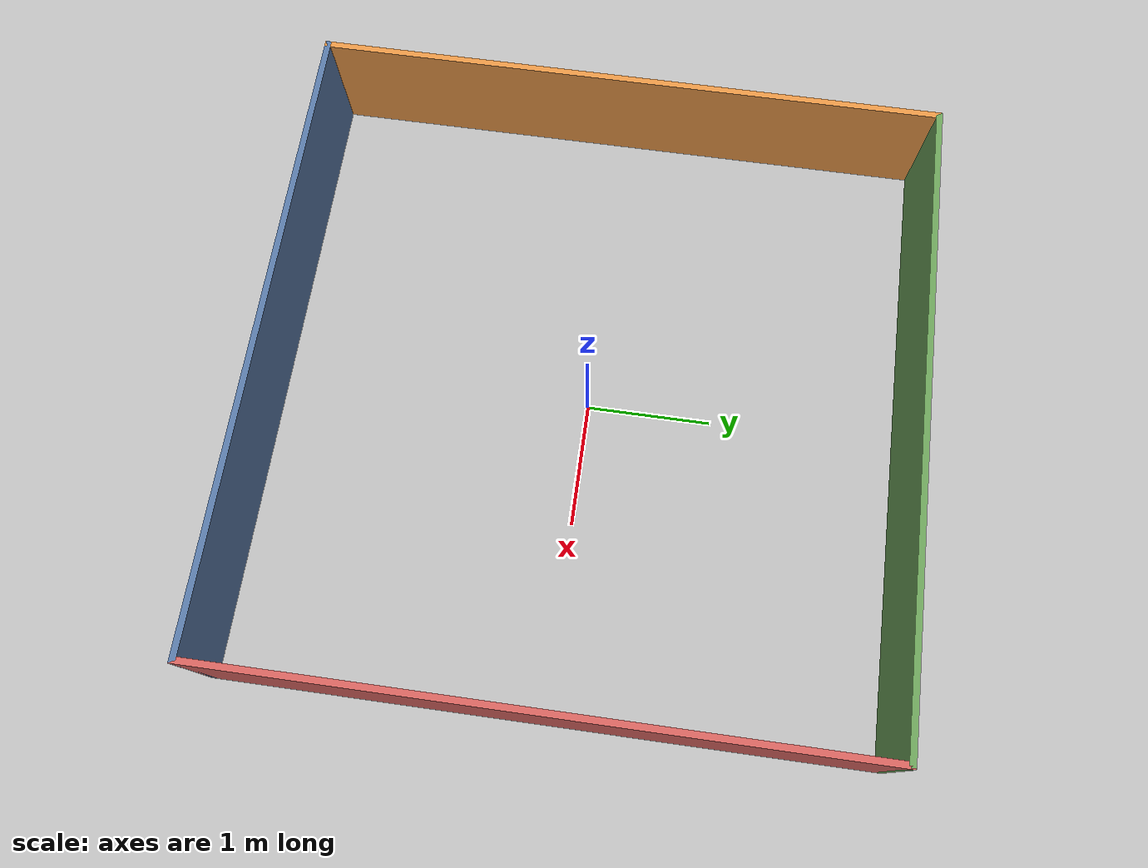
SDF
<?xml version="1.0"?>

<sdf version="1.6">
  <model name='LineTrack'>
    <static>true</static>
    <link name="track">
      <pose>0 0 0 0 0 0</pose>
        <visual name="visual">
          <geometry>
            <mesh><uri>model://LineTrack/meshes/track.obj</uri></mesh>
          </geometry>
        </visual>
        <collision name='collision'>
          <geometry>
            <plane>
              <normal>0 0 1</normal>
              <size>100 100</size>
            </plane>
          </geometry>
        </collision>
    </link>

    <link name='wall_xp'>
      <pose>2.525 0 0.5 0 0 0</pose><!--pose relative to the world-->
      <visual name='visual'>
        <geometry>
          <box>
            <size>0.05 5.1 1.0</size>
          </box>
        </geometry>
        <!--let's add color to our link-->
        <material>
          <ambient> 0.819 0.38 0.364 1</ambient>
          <diffuse> 0.819 0.38 0.364 1</diffuse>
          <specular>0.819 0.38 0.364 1</specular>
        </material>
      </visual>
      <collision name='collision'> <!--todo: describe why we need the collision-->
        <geometry>
          <box>
            <size>0.05 5.1 1.0</size>
          </box>
        </geometry>
      </collision>
    </link>

    <link name='wall_xm'>
      <pose>-2.525 0 0.5 0 0 0</pose><!--pose relative to the world-->
      <visual name='visual'>
        <geometry>
          <box>
            <size>0.05 5.1 1.0</size>
          </box>
        </geometry>
        <!--let's add color to our link-->
        <material>
          <ambient> 0.894 0.580 0.267 1</ambient>
          <diffuse> 0.894 0.580 0.267 1</diffuse>
          <specular>0.894 0.580 0.267 1</specular>
        </material>
      </visual>
      <collision name='collision'> <!--todo: describe why we need the collision-->
        <geometry>
          <box>
            <size>0.05 5.1 1.0</size>
          </box>
        </geometry>
      </collision>
    </link>

    <link name='wall_yp'>
      <pose>0 2.525 0.5 0 0 1.57079632679</pose><!--pose relative to the world-->
      <visual name='visual'>
        <geometry>
          <box>
            <size>0.05 5.1 1.0</size>
          </box>
        </geometry>
        <!--let's add color to our link-->
        <material>
          <ambient> 0.416 0.623 0.345 1</ambient>
          <diffuse> 0.416 0.623 0.345 1</diffuse>
          <specular>0.416 0.623 0.345 1</specular>
        </material>
      </visual>
      <collision name='collision'> <!--todo: describe why we need the collision-->
        <geometry>
          <box>
            <size>0.05 5.1 1.0</size>
          </box>
        </geometry>
      </collision>
    </link>

    <link name='wall_ym'>
      <pose>0 -2.525 0.5 0 0 1.57079632679</pose><!--pose relative to the world-->
      <visual name='visual'>
        <geometry>
          <box>
            <size>0.05 5.1 1.0</size>
          </box>
        </geometry>
        <!--let's add color to our link-->
        <material>
          <ambient> 0.341 0.470 0.643 1</ambient>
          <diffuse> 0.341 0.470 0.643 1</diffuse>
          <specular>0.341 0.470 0.643 1</specular>
        </material>
      </visual>
      <collision name='collision'> <!--todo: describe why we need the collision-->
        <geometry>
          <box>
            <size>0.05 5.1 1.0</size>
          </box>
        </geometry>
      </collision>
    </link>
  </model>
</sdf>
